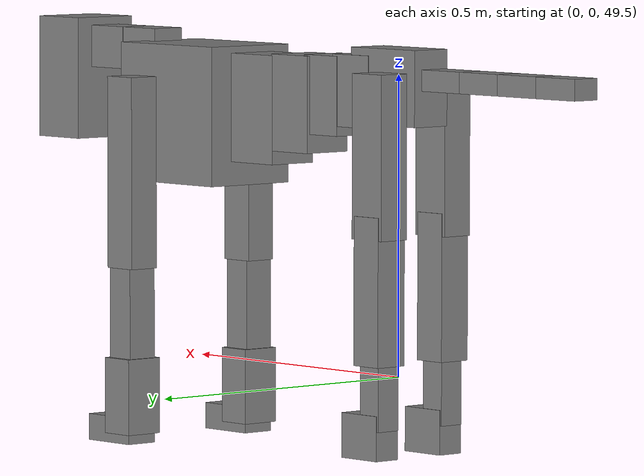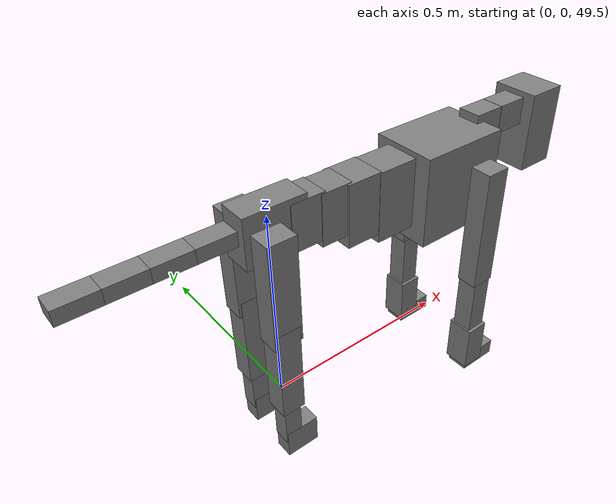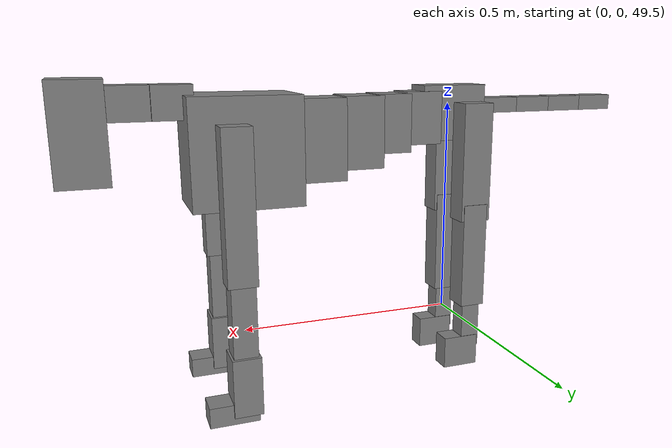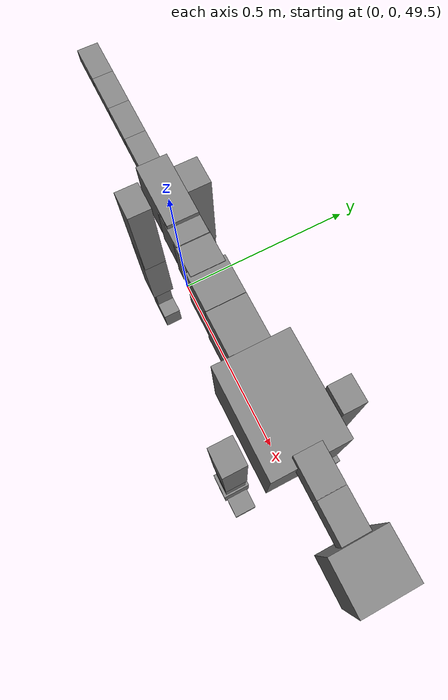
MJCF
<mujoco model="dog">

    <default>
        <joint armature="0.02" stiffness="1" damping="0.2" limited="true"/>
        <geom condim="3" friction="1 0.05 0.05" margin="0.01"/>
        <motor ctrllimited="true" ctrlrange="-1.0 1.0" forcelimited="true" gear="50"/>
    </default>

    <compiler inertiafromgeom="true" angle="radian"/>

    <option timestep="0.016" iterations="50" tolerance="1e-10" solver="Newton" jacobian="dense" cone="pyramidal"/>

    <size nconmax="20000" njmax="60000" nstack="5000000"/>
    <visual>
        <map force="0.1" zfar="30"/>
        <rgba haze="0.15 0.25 0.35 1"/>
        <quality shadowsize="2048"/>
        <global offwidth="800" offheight="800"/>
    </visual>

    <asset>
        <texture type="skybox" builtin="gradient" rgb1="0.3 0.5 0.7" rgb2="0 0 0" width="512" height="512"/>
        <texture name="texplane" type="2d" builtin="checker" rgb1=".2 .3 .4" rgb2=".1 0.15 0.2" width="512" height="512"
                 mark="cross" markrgb=".8 .8 .8"/>
        <texture name="texgeom" type="cube" builtin="flat" mark="cross" width="127" height="1278" rgb1="0.8 0.6 0.4"
                 rgb2="0.8 0.6 0.4" markrgb="1 1 1" random="0.01"/>

        <material name="matplane" reflectance="0.3" texture="texplane" texrepeat="1 1" texuniform="true"/>
        <material name="matgeom" texture="texgeom" texuniform="true" rgba="0.8 0.6 .4 1"/>
    </asset>

    <worldbody>
        <geom name="floor" pos="0 0 0" size="0 0 .25" type="plane" material="matplane" condim="3"/>

        <light directional="false" diffuse=".2 .2 .2" specular="0 0 0" pos="0 0 5" dir="0 0 -1" castshadow="false"/>
        <light mode="targetbodycom" target="torso" directional="false" diffuse=".8 .8 .8" specular="0.3 0.3 0.3"
               pos="0 0 4.0" dir="0 0 -1"/>

        <body name="root" pos="0 0 50">
            <freejoint name="root_1"/>
            <geom type="box" pos="0 0 -0.02" size="0.0774  0.0358  0.063" density="2030"/>

            <body name="spine1" pos="0.054 0 0">
                <joint name="spine1_y" axis="0 1 0" range="0 0.7" limited="true"/>
                <geom type="box" pos="0.02375 0 -0.03" size="0.04375  0.0375  0.05985" density="2030"/>

                <body name="spine2" pos="0.0612 0 0">
                    <joint name="spine2_y" axis="0 1 0" range="-0.15 0.15" limited="true"/>
                    <geom type="box" pos="0.03555  0  -0.04" size="0.04055  0.039  0.06615" density="2030"/>

                    <body name="spine3" pos="0.0730 0 0">
                        <joint name="spine3_y" axis="0 1 0" range="-0.15 0.15" limited="true"/>
                        <geom type="box" pos="0.03555  0  -0.057" size="0.04555  0.0445  0.081" density="2030"/>

                        <body name="spine4" pos="0.0780 0 0">
                            <joint name="spine4_y" axis="0 1 0" range="-0.15 0.15" limited="true"/>
                            <geom type="box" pos="0.05265  0  -0.07" size="0.05265  0.045  0.09135" density="2030"/>

                            <body name="torso" pos="0.1082 0 0">
                                <joint name="torso_y" axis="0 1 0" range="-0.15 0.15" limited="true"/>
                                <geom type="box" pos="0.11925  0  -0.085" size="0.11925  0.085  0.11745"
                                      density="2030"/>

                                <body name="neck1" pos="0.2160  0   0.0180">
                                    <joint name="neck1_y" axis="0 1 0" range="-1.2  -1" limited="true"/>
                                    <geom type="box" pos="0.0423  0  0" size="0.0423  0.03  0.036" density="2325"/>

                                    <body name="neck2" pos="0.0853  0  0">
                                        <joint name="neck2_y" axis="0 1 0" range="0.1  0" limited="true"/>
                                        <geom type="box" pos="0.0423  0  0" size="0.0423  0.03  0.036" density="2325"/>

                                        <body name="head" pos="0.0853  0  0">
                                            <joint name="head_y" axis="0 1 0" range="-0.3  -0.2" limited="true"/>
                                            <geom type="box" pos="0.0531  0  -0.055" size="0.0531  0.06  0.1044"
                                                  density="4030"/>

                                        </body>
                                    </body>
                                </body>

                                <body name="front_shoulder" pos="0.156  0   -0.0480">
                                    <joint name="front_shoulder_y" axis="0 1 0" range="-1 1.5" limited="true"/>
                                    <geom type="box" pos="0 0.13 -0.1357" size="0.0318  0.0272  0.1624" density="1158"/>
                                    <geom type="box" pos="0 -0.13 -0.1357" size="0.0318  0.0272  0.1624"
                                          density="1158"/>

                                    <body name="front_elbow" pos="0  0  -0.2715">
                                        <joint name="front_elbow_y" axis="0 1 0" range="-2 0" limited="true"/>
                                        <geom type="box" pos="0 0.13 -0.0962" size="0.0263  0.0269  0.0962"
                                              density="1081"/>
                                        <geom type="box" pos="0 -0.13 -0.0962" size="0.0263  0.0269  0.0962"
                                              density="1081"/>

                                        <body name="front_wrist" pos="0  0  -0.1923">
                                            <joint name="front_wrist_y" axis="0 1 0" range="-0.2 0" limited="true"/>
                                            <geom type="box" pos="0 0.13 -0.0512" size="0.0310  0.0344  0.0643"
                                                  density="1664"/>
                                            <geom type="box" pos="0 -0.13 -0.0512" size="0.0310  0.0344  0.0643"
                                                  density="1664"/>

                                            <body name="front_finger_end" pos="0  0  -0.1023">
                                                <joint name="front_finger_y" axis="0 1 0" range="-0.4 1"
                                                       limited="true"/>
                                                <geom type="box" pos="0.0289  0.13  -0.0073"
                                                      size="0.0530  0.0289  0.0223" density="1515"/>
                                                <geom type="box" pos="0.0289  -0.13  -0.0073"
                                                      size="0.0530  0.0289  0.0223" density="1515"/>

                                            </body>

                                        </body>
                                    </body>
                                </body>

                            </body>
                        </body>
                    </body>
                </body>
            </body>

            <body name="back_hip" pos="-0.03 0 -0.018">
                <joint name="back_hip_y" axis="0 1 0" range="-1.5 0.3" limited="true"/>
                <geom type="box" pos="0 0.07 -0.1128" size="0.0356  0.0279  0.1356" density="1154"/>
                <geom type="box" pos="0 -0.07 -0.1128" size="0.0356  0.0279  0.1356" density="1154"/>

                <body name="back_knee" pos="0  0  -0.2257">
                    <joint name="back_knee_y" axis="0 1 0" range="0 2.8" limited="true"/>
                    <geom type="box" pos="0 0.07 -0.1071" size="0.0294  0.0290  0.1226" density="1227"/>
                    <geom type="box" pos="0 -0.07 -0.1071" size="0.0294  0.0290  0.1226" density="1227"/>

                    <body name="back_ankle" pos="0  0  -0.2142">
                        <joint name="back_ankle_y" axis="0 1 0" range="-2.2 0" limited="true"/>
                        <geom type="box" pos="0 0.07 -0.0553" size="0.0221  0.0221  0.0666" density="1284"/>
                        <geom type="box" pos="0 -0.07 -0.0553" size="0.0221  0.0221  0.0666" density="1284"/>

                        <body name="back_toe_end" pos="0  0  -0.1107">
                            <joint name="back_toe_y" axis="0 1 0" range="-0.4 1" limited="true"/>
                            <geom type="box" pos="0.0233  0.07  -0.0222" size="0.0427  0.0233  0.0372" density="1515"/>
                            <geom type="box" pos="0.0233  -0.07  -0.0222" size="0.0427  0.0233  0.0372" density="1515"/>

                        </body>
                    </body>
                </body>
            </body>

            <body name="tail1" pos="-0.074 0 -0.006">
                <joint name="tail1_y" axis="0 1 0" range="-0.2 0.2" limited="true"/>
                <geom type="box" pos="-0.0536  0  0" size="0.045  0.025  0.0175" density="1587"/>

                <body name="tail2" pos="-0.09 0 0">
                    <joint name="tail2_y" axis="0 1 0" range="-0.2 0.2" limited="true"/>
                    <geom type="box" pos="-0.0536  0  0" size="0.045  0.025  0.0175" density="1587"/>

                    <body name="tail3" pos="-0.09 0 0">
                        <joint name="tail3_y" axis="0 1 0" range="-0.2 0.2" limited="true"/>
                        <geom type="box" pos="-0.0536  0  0" size="0.045  0.025  0.0175" density="1587"/>

                        <body name="tail4" pos="-0.09 0 0">
                            <joint name="tail4_y" axis="0 1 0" range="-0.2 0.2" limited="true"/>
                            <geom type="box" pos="-0.0536  0  0" size="0.045  0.025  0.0175" density="1587"/>

                        </body>
                    </body>
                </body>
            </body>
        </body>
    </worldbody>

    <actuator>
        <motor joint="spine1_y" forcerange="-150 150     "/>
        <motor joint="spine2_y" forcerange="-150 150     "/>
        <motor joint="spine3_y" forcerange="-150 150     "/>
        <motor joint="spine4_y" forcerange="-150 150     "/>
        <motor joint="torso_y" forcerange="-150 150     "/>
        <motor joint="neck1_y" forcerange="-100 100       "/>
        <motor joint="neck2_y" forcerange="-100 100       "/>
        <motor joint="head_y" forcerange="-150 150       "/>
        <motor joint="front_shoulder_y" forcerange="-124.69 156.65"/>
        <motor joint="front_elbow_y" forcerange="-137.57 158.22"/>
        <motor joint="front_wrist_y" forcerange="-148.08 127.21"/>
        <motor joint="front_finger_y" forcerange="-21.42 92.81"/>
        <motor joint="back_hip_y" forcerange="-278.80 293.61"/>
        <motor joint="back_knee_y" forcerange="-243.98 377.88"/>
        <motor joint="back_angle_y" forcerange="-153.58 99.69"/>
        <motor joint="back_toe_y" forcerange="-79.69 26.69"/>
        <motor joint="tail1_y" forcerange="-50 50     "/>
        <motor joint="tail2_y" forcerange="-50 50     "/>
        <motor joint="tail3_y" forcerange="-50 50     "/>
        <motor joint="tail4_y" forcerange="-50 50     "/>
    </actuator>
</mujoco>
